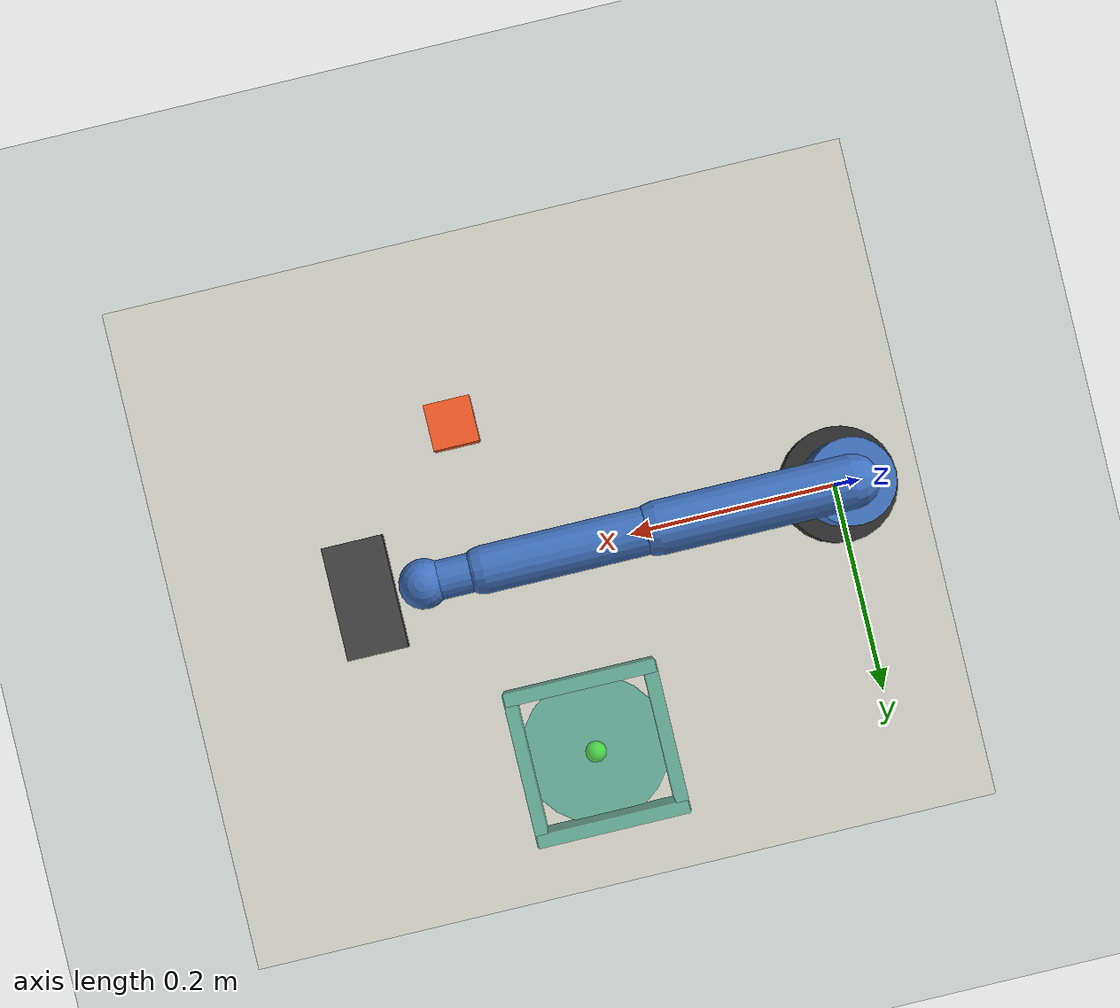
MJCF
<mujoco model="cube_bowl">
  <compiler angle="radian" autolimits="true"/>
  <option timestep="0.002" gravity="0 0 -9.81" integrator="implicitfast" cone="elliptic"/>

  <default>
    <joint damping="1.0" armature="0.01"/>
    <geom contype="1" conaffinity="1" condim="4" friction="1.0 0.02 0.001"/>
    <default class="arm_visual">
      <geom rgba="0.25 0.45 0.75 1"/>
    </default>
    <default class="gripper">
      <geom rgba="0.25 0.25 0.25 1" friction="1.5 0.03 0.003" solimp="0.95 0.99 0.001" solref="0.004 1"/>
    </default>
  </default>

  <asset>
    <texture name="checker" type="2d" builtin="checker" width="256" height="256" rgb1="0.92 0.92 0.88" rgb2="0.72 0.76 0.78"/>
    <material name="floor_mat" texture="checker" texrepeat="4 4" texuniform="true" reflectance="0.15"/>
    <material name="cube_mat" rgba="0.95 0.35 0.15 1"/>
    <material name="bowl_mat" rgba="0.25 0.65 0.55 0.7"/>
  </asset>

  <worldbody>
    <light name="key" pos="0 -1.5 2.5" dir="0 0 -1" directional="true" diffuse="0.8 0.8 0.8" ambient="0.25 0.25 0.25"/>
    <camera name="overview" pos="0.8 -0.55 0.75" xyaxes="0.738766 0.673962 0 -0.434228 0.47598 0.76478" fovy="45"/>
    <geom name="floor" type="plane" size="1.0 1.0 0.05" material="floor_mat"/>
    <geom name="workspace" type="box" pos="0.28 0 0.005" size="0.36 0.32 0.005" rgba="0.82 0.82 0.78 1"/>

    <body name="bowl" pos="0.28 0.19 0.01">
      <geom name="bowl_bottom" type="cylinder" size="0.07 0.008" material="bowl_mat"/>
      <geom name="bowl_front" type="box" pos="0 -0.067 0.035" size="0.072 0.006 0.035" material="bowl_mat"/>
      <geom name="bowl_back" type="box" pos="0 0.067 0.035" size="0.072 0.006 0.035" material="bowl_mat"/>
      <geom name="bowl_left" type="box" pos="-0.067 0 0.035" size="0.006 0.072 0.035" material="bowl_mat"/>
      <geom name="bowl_right" type="box" pos="0.067 0 0.035" size="0.006 0.072 0.035" material="bowl_mat"/>
      <site name="bowl_target" pos="0 0 0.04" size="0.01" rgba="0.1 0.9 0.1 0.7"/>
    </body>

    <body name="cube" pos="0.34 -0.14 0.035">
      <freejoint name="cube_freejoint"/>
      <geom name="cube_geom" type="box" size="0.022 0.022 0.022" mass="0.02" friction="3 0.05 0.001" condim="4" solimp="0.95 0.99 0.001" solref="0.004 1" material="cube_mat"/>
    </body>

    <body name="robot/base" pos="0 0 0.02">
      <geom name="base_geom" type="cylinder" size="0.055 0.025" rgba="0.18 0.18 0.18 1"/>
      <body name="robot/shoulder" pos="0 0 0.09">
        <joint name="robot/shoulder_pan_joint" type="hinge" axis="0 0 1" range="-3.14159 3.14159"/>
        <geom name="shoulder_geom" type="cylinder" size="0.04 0.04" class="arm_visual"/>
        <body name="robot/upper_arm" pos="0 0 0.04">
          <joint name="robot/shoulder_lift_joint" type="hinge" axis="0 1 0" range="-2.6 2.6"/>
          <geom name="upper_arm_geom" type="capsule" fromto="0 0 0 0.18 0 0" size="0.025" class="arm_visual"/>
          <body name="robot/forearm" pos="0.18 0 0">
            <joint name="robot/elbow_joint" type="hinge" axis="0 1 0" range="-2.6 2.6"/>
            <geom name="forearm_geom" type="capsule" fromto="0 0 0 0.16 0 0" size="0.022" class="arm_visual"/>
            <body name="robot/wrist_1" pos="0.16 0 0">
              <joint name="robot/wrist_1_joint" type="hinge" axis="0 1 0" range="-3.14159 3.14159"/>
              <geom name="wrist1_geom" type="capsule" fromto="0 0 0 0.055 0 0" size="0.018" class="arm_visual"/>
              <body name="robot/wrist_2" pos="0.055 0 0">
                <joint name="robot/wrist_2_joint" type="hinge" axis="1 0 0" range="-3.14159 3.14159"/>
                <geom name="wrist2_geom" type="sphere" size="0.023" class="arm_visual"/>
                <body name="robot/tool0" pos="0.055 0 0">
                  <joint name="robot/wrist_3_joint" type="hinge" axis="0 0 1" range="-3.14159 3.14159"/>
                  <geom name="palm" type="box" pos="0 0 -0.015" size="0.028 0.052 0.012" class="gripper"/>
                  <site name="pinch" pos="0 0 -0.085" size="0.006" rgba="0.9 0.9 0.9 0.8"/>
                  <body name="gripper/left_finger" pos="0 -0.046 -0.035">
                    <joint name="gripper/left_finger_joint" type="slide" axis="0 1 0" range="0 0.038" damping="2.0"/>
                    <geom name="left_pad" type="box" pos="0 0 -0.035" size="0.013 0.006 0.04" class="gripper"/>
                  </body>
                  <body name="gripper/right_finger" pos="0 0.046 -0.035">
                    <joint name="gripper/right_finger_joint" type="slide" axis="0 -1 0" range="0 0.038" damping="2.0"/>
                    <geom name="right_pad" type="box" pos="0 0 -0.035" size="0.013 0.006 0.04" class="gripper"/>
                  </body>
                </body>
              </body>
            </body>
          </body>
        </body>
      </body>
    </body>
  </worldbody>

  <equality>
    <joint name="finger_mimic" joint1="gripper/left_finger_joint" joint2="gripper/right_finger_joint" polycoef="0 1 0 0 0" solref="0.004 1" solimp="0.95 0.99 0.001"/>
  </equality>

  <actuator>
    <position name="robot/shoulder_pan" joint="robot/shoulder_pan_joint" kp="90" forcerange="-70 70" ctrlrange="-3.14159 3.14159"/>
    <position name="robot/shoulder_lift" joint="robot/shoulder_lift_joint" kp="90" forcerange="-70 70" ctrlrange="-2.6 2.6"/>
    <position name="robot/elbow" joint="robot/elbow_joint" kp="80" forcerange="-60 60" ctrlrange="-2.6 2.6"/>
    <position name="robot/wrist_1" joint="robot/wrist_1_joint" kp="45" forcerange="-25 25" ctrlrange="-3.14159 3.14159"/>
    <position name="robot/wrist_2" joint="robot/wrist_2_joint" kp="45" forcerange="-25 25" ctrlrange="-3.14159 3.14159"/>
    <position name="robot/wrist_3" joint="robot/wrist_3_joint" kp="35" forcerange="-20 20" ctrlrange="-3.14159 3.14159"/>
    <position name="gripper" joint="gripper/left_finger_joint" kp="350" forcerange="-35 35" ctrlrange="0 0.038"/>
  </actuator>
</mujoco>
